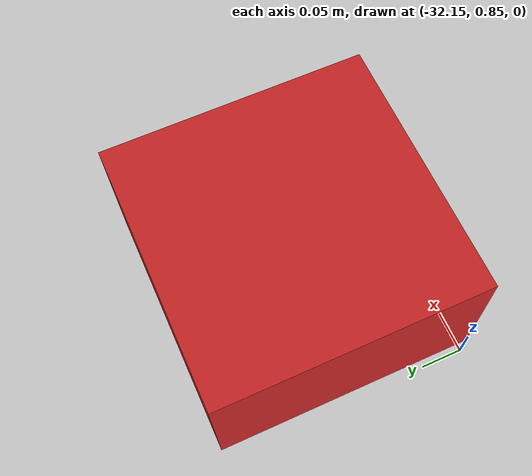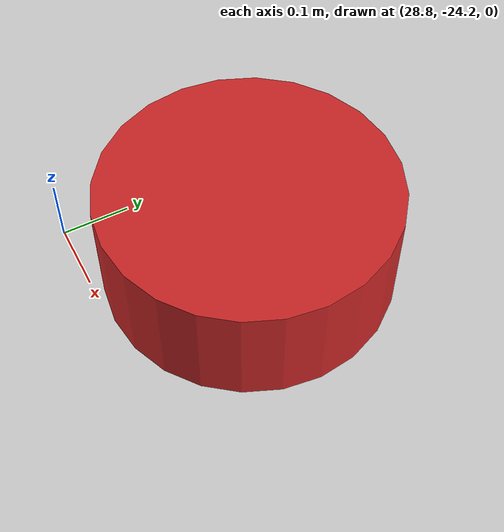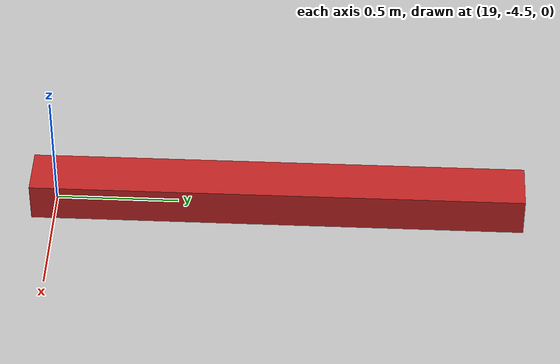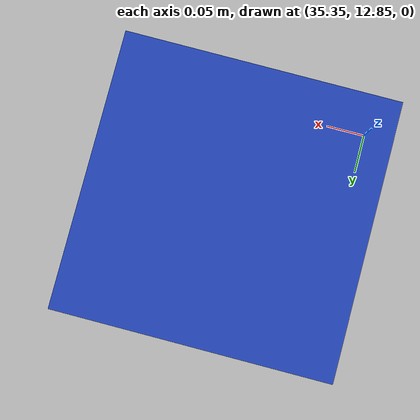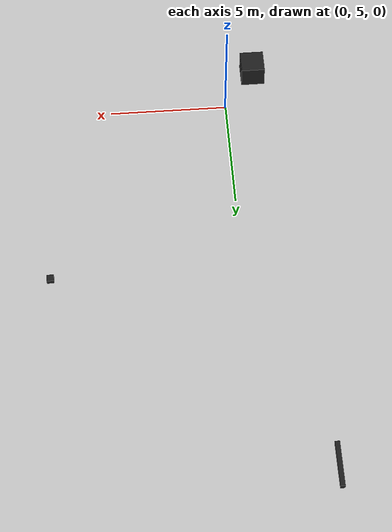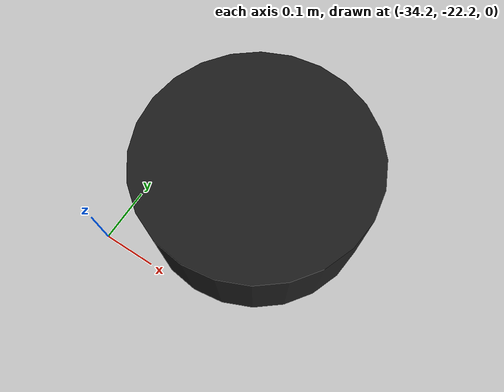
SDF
<sdf version="1.4">
 <world name="default">
  <light name="sun" type="directional">
   <pose>0 0 10 0 -0 0</pose>
   <diffuse>0.8 0.8 0.8 1</diffuse>
   <specular>0.2 0.2 0.2 1</specular>
   <attenuation>
    <range>1000</range>
    <constant>0.9</constant>
    <linear>0.01</linear>
    <quadratic>0.001</quadratic>
   </attenuation>
   <direction>-0.5 0.1 -0.9</direction>
  </light>
  <model name="mygroundplane1">
   <static>1</static>
   <link name="link">
    <pose>64.9055 -24.9103 0.039994 6.61744e-24 5.9e-05 -0.000543</pose>
    <collision name="collision">
     <geometry><plane><normal>0 0 1</normal><size>140 60</size></plane></geometry>
     <surface><friction><ode><mu>100</mu><mu2>50</mu2></ode></friction></surface>
    </collision>
    <visual name="visual">
     <cast_shadows>0</cast_shadows>
     <geometry><plane><normal>0 0 1</normal><size>140 60</size></plane></geometry>
     <material>
      <script>
       <uri>file://media/materials/scripts/mygroundplane1.material</uri>
       <name>MyGroundPlane1/Image2</name>
      </script>
     </material>
     <transparency>0.8</transparency>
    </visual>
    <velocity_decay><linear>0</linear><angular>0</angular></velocity_decay>
   </link>
  </model>
  <physics type="ode">
   <max_step_size>0.001</max_step_size>
   <real_time_factor>1</real_time_factor>
   <real_time_update_rate>1000</real_time_update_rate>
   <gravity>0 0 -9.8</gravity>
  </physics>
  <scene><ambient>0.4 0.4 0.4 1</ambient><background>0.7 0.7 0.7 1</background><shadows>1</shadows></scene>
  <spherical_coordinates>
   <surface_model>EARTH_WGS84</surface_model>
   <latitude_deg>0</latitude_deg>
   <longitude_deg>0</longitude_deg>
   <elevation>0</elevation>
   <heading_deg>0</heading_deg>
  </spherical_coordinates>
  <model name="unit_box_1">
   <pose>-32 1 0.1 0 0 -2e-06</pose>
   <link name="link">
    <inertial>
     <mass>1</mass>
     <inertia><ixx>1</ixx><ixy>0</ixy><ixz>0</ixz><iyy>1</iyy><iyz>0</iyz><izz>1</izz></inertia>
    </inertial>
    <collision name="collision"><geometry><box><size>0.3 0.3 0.2</size></box></geometry></collision>
    <visual name="visual">
     <geometry><box><size>0.3 0.3 0.2</size></box></geometry>
     <material>
      <script><uri>file://media/materials/scripts/gazebo.material</uri><name>Gazebo/Red</name></script>
     </material>
    </visual>
    <velocity_decay><linear>0</linear><angular>0</angular></velocity_decay>
   </link>
   <static>0</static>
  </model>
  <model name="unit_box_2">
   <pose>-23 11 0.1 0 0 -1.2e-05</pose>
   <link name="link">
    <inertial>
     <mass>1</mass>
     <inertia><ixx>1</ixx><ixy>0</ixy><ixz>0</ixz><iyy>1</iyy><iyz>0</iyz><izz>1</izz></inertia>
    </inertial>
    <collision name="collision"><geometry><box><size>0.3 0.3 0.2</size></box></geometry></collision>
    <visual name="visual">
     <geometry><box><size>0.3 0.3 0.2</size></box></geometry>
     <material>
      <script><uri>file://media/materials/scripts/gazebo.material</uri><name>Gazebo/Blue</name></script>
     </material>
    </visual>
    <velocity_decay><linear>0</linear><angular>0</angular></velocity_decay>
   </link>
   <static>0</static>
  </model>
  <model name="unit_box_3">
   <pose>8 13.4774 0.099991 -1e-06 -3.23117e-27 -2.2e-05</pose>
   <link name="link">
    <inertial>
     <mass>1</mass>
     <inertia><ixx>1</ixx><ixy>0</ixy><ixz>0</ixz><iyy>1</iyy><iyz>0</iyz><izz>1</izz></inertia>
    </inertial>
    <collision name="collision"><geometry><box><size>0.3 0.3 0.2</size></box></geometry></collision>
    <visual name="visual">
     <geometry><box><size>0.3 0.3 0.2</size></box></geometry>
     <material>
      <script><uri>file://media/materials/scripts/gazebo.material</uri><name>Gazebo/Black</name></script>
     </material>
    </visual>
    <velocity_decay><linear>0</linear><angular>0</angular></velocity_decay>
   </link>
   <static>0</static>
  </model>
  <model name="unit_box_4">
   <pose>2 -19 0.1 0 -0 3.9e-05</pose>
   <link name="link">
    <inertial>
     <mass>1</mass>
     <inertia><ixx>1</ixx><ixy>0</ixy><ixz>0</ixz><iyy>1</iyy><iyz>0</iyz><izz>1</izz></inertia>
    </inertial>
    <collision name="collision"><geometry><box><size>0.3 0.3 0.2</size></box></geometry></collision>
    <visual name="visual">
     <geometry><box><size>0.3 0.3 0.2</size></box></geometry>
     <material>
      <script><uri>file://media/materials/scripts/gazebo.material</uri><name>Gazebo/Red</name></script>
     </material>
    </visual>
    <velocity_decay><linear>0</linear><angular>0</angular></velocity_decay>
   </link>
   <static>0</static>
  </model>
  <model name="unit_box_5">
   <pose>35.4974 13 0.1 0 -0 2.1e-05</pose>
   <link name="link">
    <inertial>
     <mass>1</mass>
     <inertia><ixx>1</ixx><ixy>0</ixy><ixz>0</ixz><iyy>1</iyy><iyz>0</iyz><izz>1</izz></inertia>
    </inertial>
    <collision name="collision"><geometry><box><size>0.3 0.3 0.2</size></box></geometry></collision>
    <visual name="visual">
     <geometry><box><size>0.3 0.3 0.2</size></box></geometry>
     <material>
      <script><uri>file://media/materials/scripts/gazebo.material</uri><name>Gazebo/Blue</name></script>
     </material>
    </visual>
    <velocity_decay><linear>0</linear><angular>0</angular></velocity_decay>
   </link>
   <static>0</static>
  </model>
  <model name="unit_cylinder_1">
   <pose>38 -5 0.099999 -0 -0 -0</pose>
   <link name="link">
    <inertial>
     <mass>1</mass>
     <inertia><ixx>1</ixx><ixy>0</ixy><ixz>0</ixz><iyy>1</iyy><iyz>0</iyz><izz>1</izz></inertia>
    </inertial>
    <collision name="collision">
     <geometry><cylinder><radius>0.2</radius><length>0.2</length></cylinder></geometry>
    </collision>
    <visual name="visual">
     <geometry><cylinder><radius>0.2</radius><length>0.2</length></cylinder></geometry>
     <material>
      <script><uri>file://media/materials/scripts/gazebo.material</uri><name>Gazebo/Black</name></script>
     </material>
    </visual>
    <velocity_decay><linear>0</linear><angular>0</angular></velocity_decay>
   </link>
   <static>0</static>
  </model>
  <model name="unit_cylinder_2">
   <pose>-14 -7.45626 0.1 -0 -0 -0</pose>
   <link name="link">
    <inertial>
     <mass>1</mass>
     <inertia><ixx>1</ixx><ixy>0</ixy><ixz>0</ixz><iyy>1</iyy><iyz>0</iyz><izz>1</izz></inertia>
    </inertial>
    <collision name="collision">
     <geometry><cylinder><radius>0.2</radius><length>0.2</length></cylinder></geometry>
    </collision>
    <visual name="visual">
     <geometry><cylinder><radius>0.2</radius><length>0.2</length></cylinder></geometry>
     <material>
      <script><uri>file://media/materials/scripts/gazebo.material</uri><name>Gazebo/Red</name></script>
     </material>
    </visual>
    <velocity_decay><linear>0</linear><angular>0</angular></velocity_decay>
   </link>
   <static>0</static>
  </model>
  <model name="unit_cylinder_3">
   <pose>-42 20.4935 0.1 -0 -0 -0</pose>
   <link name="link">
    <inertial>
     <mass>1</mass>
     <inertia><ixx>1</ixx><ixy>0</ixy><ixz>0</ixz><iyy>1</iyy><iyz>0</iyz><izz>1</izz></inertia>
    </inertial>
    <collision name="collision">
     <geometry><cylinder><radius>0.2</radius><length>0.2</length></cylinder></geometry>
    </collision>
    <visual name="visual">
     <geometry><cylinder><radius>0.2</radius><length>0.2</length></cylinder></geometry>
     <material>
      <script><uri>file://media/materials/scripts/gazebo.material</uri><name>Gazebo/Blue</name></script>
     </material>
    </visual>
    <velocity_decay><linear>0</linear><angular>0</angular></velocity_decay>
   </link>
   <static>0</static>
  </model>
  <model name="unit_cylinder_4">
   <pose>-34 -22 0.1 -0 -0 -0</pose>
   <link name="link">
    <inertial>
     <mass>1</mass>
     <inertia><ixx>1</ixx><ixy>0</ixy><ixz>0</ixz><iyy>1</iyy><iyz>0</iyz><izz>1</izz></inertia>
    </inertial>
    <collision name="collision">
     <geometry><cylinder><radius>0.2</radius><length>0.2</length></cylinder></geometry>
    </collision>
    <visual name="visual">
     <geometry><cylinder><radius>0.2</radius><length>0.2</length></cylinder></geometry>
     <material>
      <script><uri>file://media/materials/scripts/gazebo.material</uri><name>Gazebo/Black</name></script>
     </material>
    </visual>
    <velocity_decay><linear>0</linear><angular>0</angular></velocity_decay>
   </link>
   <static>0</static>
  </model>
  <model name="unit_cylinder_5">
   <pose>29 -24 0.1 -0 -0 -0</pose>
   <link name="link">
    <inertial>
     <mass>1</mass>
     <inertia><ixx>1</ixx><ixy>0</ixy><ixz>0</ixz><iyy>1</iyy><iyz>0</iyz><izz>1</izz></inertia>
    </inertial>
    <collision name="collision">
     <geometry><cylinder><radius>0.2</radius><length>0.2</length></cylinder></geometry>
    </collision>
    <visual name="visual">
     <geometry><cylinder><radius>0.2</radius><length>0.2</length></cylinder></geometry>
     <material>
      <script><uri>file://media/materials/scripts/gazebo.material</uri><name>Gazebo/Red</name></script>
     </material>
    </visual>
    <velocity_decay><linear>0</linear><angular>0</angular></velocity_decay>
   </link>
   <static>0</static>
  </model>
  <model name="unit_box_1_0">
   <pose>19.0687 -3.58546 0.1 1.29247e-26 -1e-06 -4.1e-05</pose>
   <link name="link">
    <inertial>
     <mass>1</mass>
     <inertia><ixx>1</ixx><ixy>0</ixy><ixz>0</ixz><iyy>1</iyy><iyz>0</iyz><izz>1</izz></inertia>
    </inertial>
    <collision name="collision"><geometry><box><size>0.3 0.3 0.2</size></box></geometry></collision>
    <visual name="visual">
     <geometry><box><size>0.2 2 0.2</size></box></geometry>
     <material>
      <script><uri>file://media/materials/scripts/gazebo.material</uri><name>Gazebo/Red</name></script>
     </material>
    </visual>
    <velocity_decay><linear>0</linear><angular>0</angular></velocity_decay>
   </link>
   <static>0</static>
  </model>
  <model name="unit_box_2_0">
   <pose>-22 -20 0.1 1.61559e-27 1e-06 -1e-05</pose>
   <link name="link">
    <inertial>
     <mass>1</mass>
     <inertia><ixx>1</ixx><ixy>0</ixy><ixz>0</ixz><iyy>1</iyy><iyz>0</iyz><izz>1</izz></inertia>
    </inertial>
    <collision name="collision"><geometry><box><size>0.3 0.3 0.2</size></box></geometry></collision>
    <visual name="visual">
     <geometry><box><size>2 0.2 0.2</size></box></geometry>
     <material>
      <script><uri>file://media/materials/scripts/gazebo.material</uri><name>Gazebo/Blue</name></script>
     </material>
    </visual>
    <velocity_decay><linear>0</linear><angular>0</angular></velocity_decay>
   </link>
   <static>0</static>
  </model>
  <model name="unit_box_3_0">
   <pose>-3 23 0.1 -8.07794e-28 1e-06 -7e-06</pose>
   <link name="link">
    <inertial>
     <mass>1</mass>
     <inertia><ixx>1</ixx><ixy>0</ixy><ixz>0</ixz><iyy>1</iyy><iyz>0</iyz><izz>1</izz></inertia>
    </inertial>
    <collision name="collision"><geometry><box><size>0.3 0.3 0.2</size></box></geometry></collision>
    <visual name="visual">
     <geometry><box><size>0.2 2 0.2</size></box></geometry>
     <material>
      <script><uri>file://media/materials/scripts/gazebo.material</uri><name>Gazebo/Black</name></script>
     </material>
    </visual>
    <velocity_decay><linear>0</linear><angular>0</angular></velocity_decay>
   </link>
   <static>0</static>
  </model>
  <model name="unit_box_5_0">
   <pose>-1.30211 3.2934 0.5 0 -0 0</pose>
   <link name="link">
    <inertial>
     <mass>1</mass>
     <inertia><ixx>1</ixx><ixy>0</ixy><ixz>0</ixz><iyy>1</iyy><iyz>0</iyz><izz>1</izz></inertia>
    </inertial>
    <collision name="collision"><geometry><box><size>1 1 1</size></box></geometry></collision>
    <visual name="visual">
     <geometry><box><size>1 1 1</size></box></geometry>
     <material>
      <script><uri>file://media/materials/scripts/gazebo.material</uri><name>Gazebo/Black</name></script>
     </material>
    </visual>
    <velocity_decay><linear>0</linear><angular>0</angular></velocity_decay>
   </link>
   <static>0</static>
  </model>
 </world>
</sdf>
